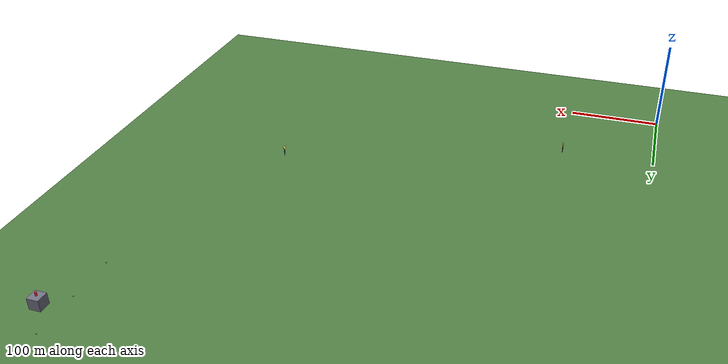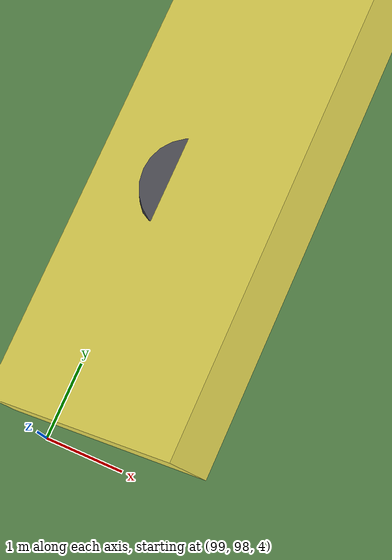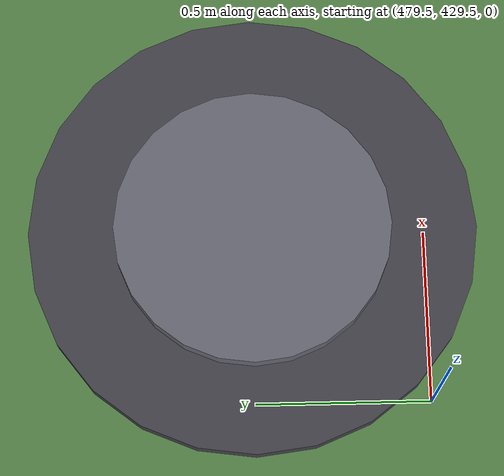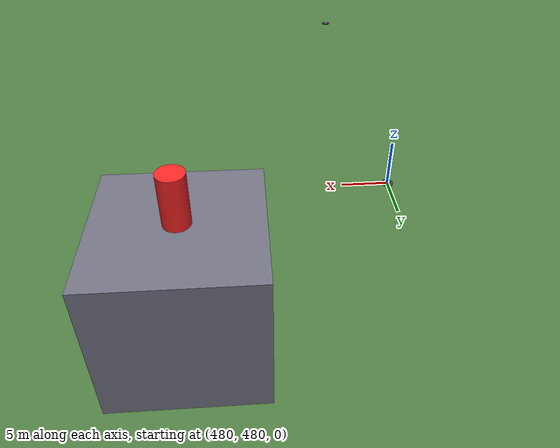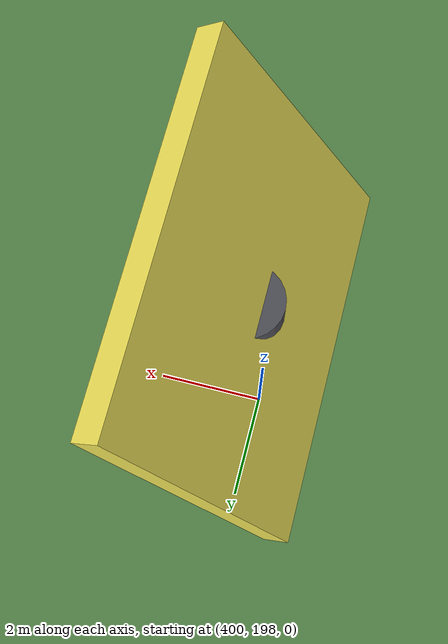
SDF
<sdf version="1.9">
 <world name="intercept_scenario">
  <physics name="1ms" type="ignored">
   <max_step_size>0.001</max_step_size>
   <real_time_factor>1.0</real_time_factor>
  </physics>
  <plugin filename="gz-sim-physics-system" name="gz::sim::systems::Physics"/>
  <plugin filename="gz-sim-user-commands-system" name="gz::sim::systems::UserCommands"/>
  <plugin filename="gz-sim-scene-broadcaster-system" name="gz::sim::systems::SceneBroadcaster"/>
  <plugin filename="gz-sim-sensors-system" name="gz::sim::systems::Sensors">
   <render_engine>ogre2</render_engine>
  </plugin>
  <scene>
   <sky>
    <time>10</time>
    <sunrise>6</sunrise>
    <sunset>20</sunset>
    <clouds>
     <speed>8</speed>
     <direction>0.5</direction>
     <humidity>0.4</humidity>
     <mean_size>0.5</mean_size>
     <ambient>0.9 0.9 0.9 1</ambient>
    </clouds>
   </sky>
   <ambient>0.5 0.5 0.5 1</ambient>
   <background>0.6 0.78 0.95 1</background>
   <shadows>true</shadows>
  </scene>
  <light type="directional" name="sun">
   <pose>0 0 500 0 0 0</pose>
   <diffuse>0.95 0.90 0.80 1</diffuse>
   <specular>0.30 0.30 0.30 1</specular>
   <direction>-0.45 0.15 -0.87</direction>
  </light>
  <model name="terrain">
   <static>true</static>
   <link name="link">
    <pose>0 0 -0.05 0 0 0</pose>
    <collision name="collision"><geometry><box><size>5000 5000 0.1</size></box></geometry></collision>
    <visual name="visual">
     <geometry><box><size>5000 5000 0.1</size></box></geometry>
     <material>
      <ambient>0.30 0.48 0.25 1</ambient>
      <diffuse>0.32 0.50 0.27 1</diffuse>
      <specular>0.05 0.05 0.05 1</specular>
     </material>
    </visual>
   </link>
  </model>
  <model name="pedestal_1">
   <static>true</static>
   <pose>480 430 0 0 0 0</pose>
   <link name="link">
    <visual name="base">
     <pose>0 0 0.03 0 0 0</pose>
     <geometry><cylinder><radius>0.65</radius><length>0.06</length></cylinder></geometry>
     <material><ambient>0.18 0.18 0.20 1</ambient><diffuse>0.25 0.25 0.28 1</diffuse></material>
    </visual>
    <visual name="column">
     <pose>0 0 0.07 0 0 0</pose>
     <geometry><cylinder><radius>0.40</radius><length>0.10</length></cylinder></geometry>
     <material>
      <ambient>0.30 0.30 0.34 1</ambient>
      <diffuse>0.40 0.40 0.45 1</diffuse>
      <specular>0.2 0.2 0.2 1</specular>
     </material>
    </visual>
   </link>
  </model>
  <model name="pedestal_2">
   <static>true</static>
   <pose>480 480 0 0 0 0</pose>
   <link name="link">
    <visual name="base">
     <pose>0 0 0.03 0 0 0</pose>
     <geometry><cylinder><radius>0.65</radius><length>0.06</length></cylinder></geometry>
     <material><ambient>0.18 0.18 0.20 1</ambient><diffuse>0.25 0.25 0.28 1</diffuse></material>
    </visual>
    <visual name="column">
     <pose>0 0 0.07 0 0 0</pose>
     <geometry><cylinder><radius>0.40</radius><length>0.10</length></cylinder></geometry>
     <material>
      <ambient>0.30 0.30 0.34 1</ambient>
      <diffuse>0.40 0.40 0.45 1</diffuse>
      <specular>0.2 0.2 0.2 1</specular>
     </material>
    </visual>
   </link>
  </model>
  <model name="pedestal_3">
   <static>true</static>
   <pose>480 530 0 0 0 0</pose>
   <link name="link">
    <visual name="base">
     <pose>0 0 0.03 0 0 0</pose>
     <geometry><cylinder><radius>0.65</radius><length>0.06</length></cylinder></geometry>
     <material><ambient>0.18 0.18 0.20 1</ambient><diffuse>0.25 0.25 0.28 1</diffuse></material>
    </visual>
    <visual name="column">
     <pose>0 0 0.07 0 0 0</pose>
     <geometry><cylinder><radius>0.40</radius><length>0.10</length></cylinder></geometry>
     <material>
      <ambient>0.30 0.30 0.34 1</ambient>
      <diffuse>0.40 0.40 0.45 1</diffuse>
      <specular>0.2 0.2 0.2 1</specular>
     </material>
    </visual>
   </link>
  </model>
  <model name="defended_asset">
   <static>true</static>
   <pose>500 500 0 0 0 0</pose>
   <link name="link">
    <visual name="building">
     <pose>0 0 6 0 0 0</pose>
     <geometry><box><size>12 12 12</size></box></geometry>
     <material>
      <ambient>0.35 0.35 0.40 1</ambient>
      <diffuse>0.45 0.45 0.52 1</diffuse>
      <specular>0.10 0.10 0.10 1</specular>
     </material>
    </visual>
    <visual name="beacon">
     <pose>0 0 14 0 0 0</pose>
     <geometry><cylinder><radius>1.0</radius><length>4</length></cylinder></geometry>
     <material>
      <ambient>0.9 0.1 0.1 1</ambient>
      <diffuse>1.0 0.15 0.15 1</diffuse>
      <emissive>0.6 0.0 0.0 1</emissive>
     </material>
    </visual>
   </link>
  </model>
  <model name="radar_1">
   <static>true</static>
   <pose>100 100 0 0 0 0</pose>
   <link name="link">
    <visual name="mast">
     <pose>0 0 5 0 0 0</pose>
     <geometry><cylinder><radius>0.4</radius><length>10</length></cylinder></geometry>
     <material><ambient>0.2 0.2 0.22 1</ambient><diffuse>0.3 0.3 0.33 1</diffuse></material>
    </visual>
    <visual name="dish">
     <pose>0 0 10 0 0.6 0</pose>
     <geometry><box><size>0.3 4 3</size></box></geometry>
     <material><ambient>0.85 0.80 0.30 1</ambient><diffuse>0.95 0.90 0.35 1</diffuse></material>
    </visual>
   </link>
  </model>
  <model name="radar_2">
   <static>true</static>
   <pose>400 200 0 0 0 0</pose>
   <link name="link">
    <visual name="mast">
     <pose>0 0 5 0 0 0</pose>
     <geometry><cylinder><radius>0.4</radius><length>10</length></cylinder></geometry>
     <material><ambient>0.2 0.2 0.22 1</ambient><diffuse>0.3 0.3 0.33 1</diffuse></material>
    </visual>
    <visual name="dish">
     <pose>0 0 10 0 0.6 0</pose>
     <geometry><box><size>0.3 4 3</size></box></geometry>
     <material><ambient>0.85 0.80 0.30 1</ambient><diffuse>0.95 0.90 0.35 1</diffuse></material>
    </visual>
   </link>
  </model>
 </world>
</sdf>
